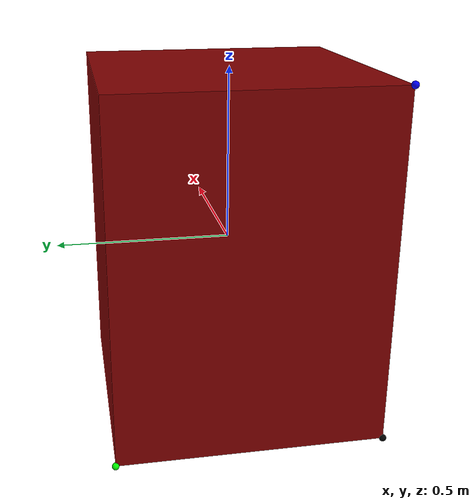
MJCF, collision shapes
<mujoco model="model">
  <asset>
    <texture file="visuals/image0.png" name="tex-model" type="2d" />
    <texture type="2d" name="image0" file="visuals/image0.png" />
    <material name="model" reflectance="0.5" texrepeat="1 1" texture="tex-model" texuniform="false" />
    <material name="Industrial_Stool" texture="image0" specular="0.5" shininess="0.25" />
    <mesh file="visuals/model_0.obj" name="model_0_vis" scale="1 1 1" />
  </asset>
  <default>
    <default class="visual">
      <geom conaffinity="0" contype="0" group="1" type="mesh" />
    </default>
    <default class="collision">
      <geom group="0" rgba="0.5 0 0 0.5" />
    </default>
  </default>
  <worldbody>
    <body>
      <!-- exterior bounding box points -->
      <site rgba="0 0 0 1" size="0.01" pos="-0.3786086429749445 -0.37860849391290247 -0.5"
        name="ext_p0" />
      <site rgba="1 0 0 1" size="0.01" pos="0.3786086429749445 -0.37860849391290247 -0.5"
        name="ext_px" />
      <site rgba="0 1 0 1" size="0.01" pos="-0.3786086429749445 0.37860849391290247 -0.5"
        name="ext_py" />
      <site rgba="0 0 1 1" size="0.01" pos="-0.3786086429749445 -0.37860849391290247 0.5"
        name="ext_pz" />
      <!-- interior bounding box points -->
      <body name="object">
        <geom solimp="0.998 0.998 0.001" solref="0.001 1" density="100" friction="0.95 0.3 0.1"
          type="mesh" mesh="model_0_vis" material="Industrial_Stool" class="visual" />
        <geom class="collision" type="box" pos="0 0 0"
          size="0.3786086429749445 0.37860849391290247 0.5" />
      </body>
    </body>
  </worldbody>
</mujoco>
